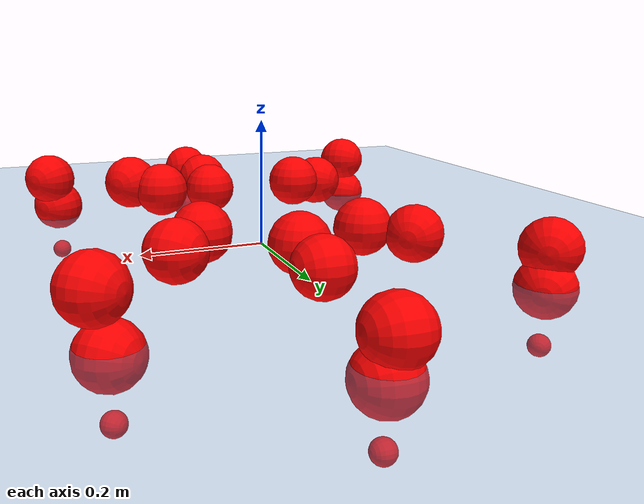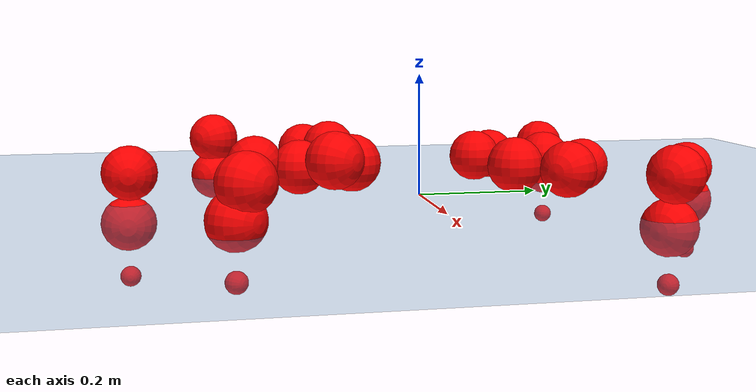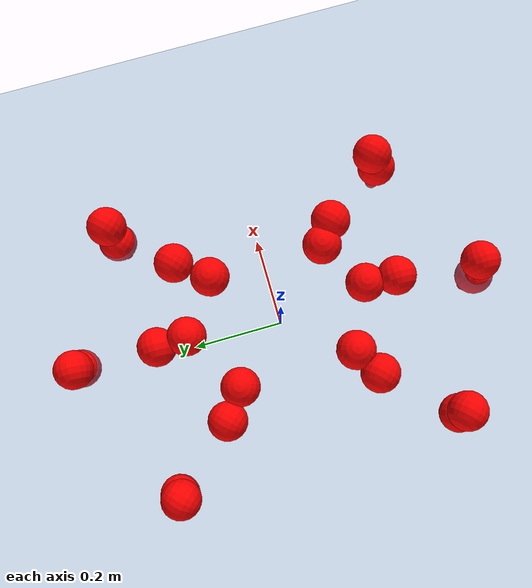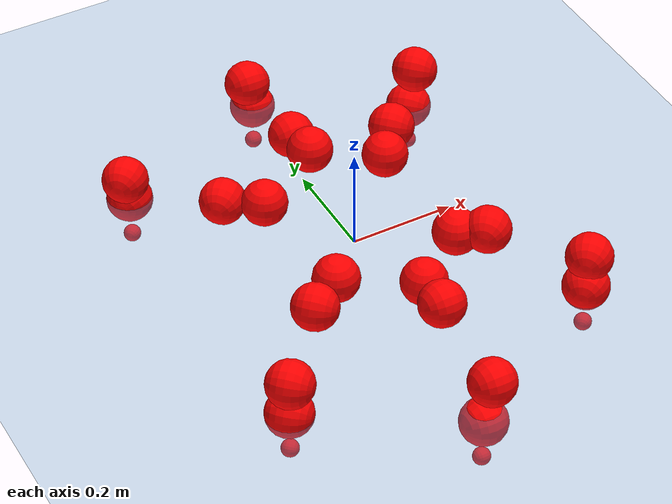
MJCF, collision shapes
<mujoco model="Golem">
  <compiler angle="radian" assetdir="assets" balanceinertia="true" inertiafromgeom="false"/>

  <option timestep="0.005" density="1.2" viscosity="2e-05"/>

  <size nkey="1"/>

  <visual>
    <quality shadowsize="8192"/>
    <map shadowclip="0.5"/>
  </visual>

  <default>
    <default class="/">
      <joint armature="0.01" damping="0.01" frictionloss="0.01"/>
      <geom contype="0" conaffinity="0" group="1" solref="-1000 -80"/>
      <site size="0.01 0.005 0.005" group="5"/>
      <general forcelimited="true" biastype="affine" gainprm="25" biasprm="0 -25 -0.5"/>
      <default class="visual">
        <geom type="mesh" group="2"/>
      </default>
      <default class="collision">
        <geom group="3"/>
      </default>
      <default class="foot">
        <geom size="0.01 0 0" condim="6" group="4" priority="1" solimp="0.015 1 0.01"/>
      </default>
      <default class="reward_collision_sphere">
        <geom group="5" rgba="1 0 0 1"/>
      </default>
    </default>
  </default>

  <asset>
    <texture type="skybox" colorspace="auto" name="//unnamed_texture_0" builtin="gradient" rgb1="0.95 0.95 0.95" rgb2="0.95 0.95 0.95" width="100" height="600"/>
    <texture type="2d" colorspace="auto" name="texplane" builtin="checker" rgb1="0.345 0.575 0.748" rgb2="0.345 0.575 0.748" markrgb="1 1 1" width="512" height="512"/>
    <material name="MatPlane" class="/" texture="texplane" texuniform="true" texrepeat="2 2" specular="0.9"/>
    <mesh name="body" class="/" file="body.stl" scale="0.001 0.001 0.001"/>
    <mesh name="coxa" class="/" file="coxa.stl" scale="0.001 0.001 0.001"/>
    <mesh name="femur" class="/" file="femur.stl" scale="0.001 0.001 0.001"/>
    <mesh name="tibia" class="/" file="tibia.stl" scale="0.001 0.001 0.001"/>
    <mesh name="tarsus" class="/" file="tarsus.stl" scale="0.001 0.001 0.001"/>
  </asset>

  <worldbody>
    <geom name="floor" class="/" size="100 100 0.125" type="plane" group="0" material="MatPlane"/>
    <light name="toplight_shadow" class="/" pos="0 0 5" dir="0.0990148 0.0990148 -0.990148" type="directional" ambient="0.04 0.04 0.04" diffuse="0.55 0.55 0.55" specular="0.12 0.12 0.12"/>
    <light name="toplight_fill" class="/" pos="0 0 5" dir="0.0990148 0.0990148 -0.990148" type="directional" castshadow="false" ambient="0.04 0.04 0.04" diffuse="0.3 0.3 0.3" specular="0.08 0.08 0.08"/>
    <body name="trunk" pos="0.0118841 -0.000114628 0.00994927" quat="0.999997 0.00220426 0.00120615 0.00049186">
      <inertial pos="0.00514962 0.00696875 0.0153944" quat="0.996931 0.0629982 -0.0271685 0.037706" mass="5.64993" diaginertia="0.00400746 0.142205 0.00356047"/>
      <joint name="//unnamed_joint_0" type="free"/>
      <geom name="//unnamed_geom_1" class="/" pos="0 0 0.0504955" quat="1 0 0 0" type="mesh" rgba="0.9 0.9 0.9 1" mesh="body"/>
      <site name="imu" class="/" pos="0.0576114 0.0383017 0.126524" size="0.0109695"/>
      <camera name="track" class="/" pos="0 -3.39918 0" quat="0.707107 0.707107 0 0" mode="trackcom"/>
      <camera name="ego_camera" class="/" pos="0.104297 0 0.0788992" quat="-0.5 -0.5 0.5 0.5"/>
      <body name="coxa_RR" pos="-0.141131 -0.153969 0.0622592" quat="0.382658 -0.000317901 -0.000888005 -0.92389">
        <inertial pos="0.00772068 -0.000961106 0.00906388" quat="0.998392 -0.0207633 0.0237687 0.0470805" mass="0.306289" diaginertia="0.00316171 0.169553 0.00355795"/>
        <joint name="coxa_joint_RR" class="/" pos="0 0 0" axis="0.018161 0.0491716 -0.998625" stiffness="0.00323536" range="-2.95918 2.82707" armature="0.0164581" damping="0.0278259" frictionloss="0.0167466"/>
        <geom name="//unnamed_geom_2" class="/" type="mesh" rgba="0.2 0.2 0.2 1" mesh="coxa"/>
        <geom name="//unnamed_geom_3" class="reward_collision_sphere" size="0.0438782" pos="-0.0240684 0 0"/>
        <body name="femur_RR" pos="0.0457166 -0.0174433 -0.00976307" quat="0.498812 -0.50116 0.501214 0.498808">
          <inertial pos="0.00835277 -0.0153787 -0.0169333" quat="0.999594 0.00124216 0.0232042 -0.0164807" mass="0.263562" diaginertia="0.00271695 0.124303 0.00239545"/>
          <joint name="femur_joint_RR" class="/" pos="0 0 0" axis="-0.0101237 0.0337657 -0.999379" stiffness="0.0296915" range="-3.24675 3.13093" armature="0.00689387" damping="0" frictionloss="0.00156898"/>
          <geom name="//unnamed_geom_4" class="/" type="mesh" rgba="0.9 0.9 0.9 1" mesh="femur"/>
          <geom name="//unnamed_geom_5" class="reward_collision_sphere" size="0.0438782"/>
          <body name="tibia_RR" pos="-0.00904064 -0.199075 0.0164473" quat="-0.000617143 0.999999 0.00145282 0.000523832">
            <inertial pos="-0.0102455 0.0159542 -0.00276713" quat="0.999812 -0.00059536 -0.0112187 -0.0157963" mass="0.232483" diaginertia="0.00317315 0.13759 0.00305236"/>
            <joint name="tibia_joint_RR" class="/" pos="0 0 0" axis="-0.00153096 0.00165825 0.999997" range="-3.14765 3.13307" armature="0.00921544" damping="0" frictionloss="0.0171473"/>
            <geom name="//unnamed_geom_6" class="/" type="mesh" rgba="0.2 0.2 0.2 1" mesh="tibia"/>
            <geom name="//unnamed_geom_7" class="reward_collision_sphere" size="0.0438782"/>
            <body name="tarsus_RR" pos="0.0695277 0.000428919 0.00184896" quat="0.999998 9.61777e-05 -0.000188243 -0.0019453">
              <inertial pos="0.0591183 -0.00342411 0.00400214" quat="0.472729 0.542504 0.490221 0.491833" mass="0.213657" diaginertia="0.00258759 0.147618 0.00274609"/>
              <joint name="tarsus_joint_RR" class="/" pos="0 0 0" axis="0.0350617 0.0110515 0.999324" stiffness="0.00328119" range="-2.80277 2.79173" armature="0.00906695" damping="0" frictionloss="0.00980367"/>
              <geom name="//unnamed_geom_8" class="/" type="mesh" rgba="0.9 0.9 0.9 1" mesh="tarsus"/>
              <geom name="foot_1" class="foot" size="0.00624899" pos="0.0898555 0 0" quat="0 -0.707107 0 0.707107"/>
              <geom name="//unnamed_geom_10" class="reward_collision_sphere" size="0.0438782"/>
              <geom name="//unnamed_geom_11" class="reward_collision_sphere" size="0.0164543" pos="0.0862453 0 0"/>
              <site name="foot_1" class="foot" pos="0.0898555 0 0" quat="0 -0.707107 0 0.707107" size="0.0109695"/>
            </body>
          </body>
        </body>
      </body>
      <body name="coxa_RM" pos="0.0157437 -0.226666 0.0461751" quat="0.707042 -0.000512029 0.00461298 -0.707156">
        <inertial pos="-0.00307978 0.0108444 -0.000509803" quat="0.996623 0.0762293 0.0303006 -0.00367193" mass="0.205487" diaginertia="0.00252185 0.137543 0.00259823"/>
        <joint name="coxa_joint_RM" class="/" pos="0 0 0" axis="-0.0245105 0.0258128 -0.999366" range="-3.02448 3.03708" armature="0.0105374" damping="0" frictionloss="0.0133654"/>
        <geom name="//unnamed_geom_12" class="/" type="mesh" rgba="0.2 0.2 0.2 1" mesh="coxa"/>
        <geom name="//unnamed_geom_13" class="reward_collision_sphere" size="0.0438782" pos="-0.0240684 0 0"/>
        <body name="femur_RM" pos="0.0466414 -0.00565638 0.00824409" quat="0.504734 -0.500582 0.494073 0.500553">
          <inertial pos="0.0157917 0.0104942 0.0172102" quat="0.999792 -0.0138233 -0.00309146 -0.0146544" mass="0.219111" diaginertia="0.00353435 0.142031 0.00272272"/>
          <joint name="femur_joint_RM" class="/" pos="0 0 0" axis="0.0468698 0.0191215 -0.998718" range="-3.2696 2.82989" armature="0.00691644" damping="0.016749" frictionloss="0.0191116"/>
          <geom name="//unnamed_geom_14" class="/" type="mesh" rgba="0.9 0.9 0.9 1" mesh="femur"/>
          <geom name="//unnamed_geom_15" class="reward_collision_sphere" size="0.0438782"/>
          <body name="tibia_RM" pos="0.0128326 -0.194374 -0.0168113" quat="-0.00150603 0.999988 0.00123214 -0.0044355">
            <inertial pos="-0.00474912 -0.00692433 0.00388787" quat="0.999995 0.000998436 -0.00301698 -0.000478374" mass="0.22646" diaginertia="0.00253154 0.110125 0.0025884"/>
            <joint name="tibia_joint_RM" class="/" pos="0 0 0" axis="0.0519767 0.0582282 0.996949" stiffness="0.00495327" range="-3.3049 3.42626" armature="0.0132458" damping="0.0591827" frictionloss="0.00594821"/>
            <geom name="//unnamed_geom_16" class="/" type="mesh" rgba="0.2 0.2 0.2 1" mesh="tibia"/>
            <geom name="//unnamed_geom_17" class="reward_collision_sphere" size="0.0438782"/>
            <body name="tarsus_RM" pos="0.0830739 0.00392467 0.0153363" quat="0.999997 -0.00188454 0.00126649 0.000538857">
              <inertial pos="0.0545932 -0.000985364 -0.01194" quat="0.549771 0.460826 0.492338 0.492945" mass="0.239403" diaginertia="0.00258266 0.129227 0.00333903"/>
              <joint name="tarsus_joint_RM" class="/" pos="0 0 0" axis="-0.0386068 -0.000435532 0.999254" stiffness="0.0174537" range="-2.84908 3.46215" armature="0.0108862" damping="0" frictionloss="0.01451"/>
              <geom name="//unnamed_geom_18" class="/" type="mesh" rgba="0.9 0.9 0.9 1" mesh="tarsus"/>
              <geom name="foot_2" class="foot" size="0.00792362" pos="0.0898555 0 0" quat="0 -0.707107 0 0.707107"/>
              <geom name="//unnamed_geom_20" class="reward_collision_sphere" size="0.0438782"/>
              <geom name="//unnamed_geom_21" class="reward_collision_sphere" size="0.0164543" pos="0.0862453 0 0"/>
              <site name="foot_2" class="foot" pos="0.0898555 0 0" quat="0 -0.707107 0 0.707107" size="0.0109695"/>
            </body>
          </body>
        </body>
      </body>
      <body name="coxa_RF" pos="0.138058 -0.150266 0.064466" quat="0.924378 -0.00464309 -0.00227496 -0.381442">
        <inertial pos="-0.00804015 0.0179527 -0.00576688" quat="0.999376 -0.0301858 0.0182237 0.00224617" mass="0.248331" diaginertia="0.00315623 0.114439 0.0024613"/>
        <joint name="coxa_joint_RF" class="/" pos="0 0 0" axis="0.0362101 0.0137705 -0.999249" stiffness="0.0303805" range="-3.14766 2.89624" armature="0.0131696" damping="0.0725688" frictionloss="0.0116361"/>
        <geom name="//unnamed_geom_22" class="/" type="mesh" rgba="0.2 0.2 0.2 1" mesh="coxa"/>
        <geom name="//unnamed_geom_23" class="reward_collision_sphere" size="0.0438782" pos="-0.0240684 0 0"/>
        <body name="femur_RF" pos="0.0317764 0.00934434 0.00982872" quat="0.499274 -0.500746 0.50001 0.499968">
          <inertial pos="-0.00471672 -0.000628067 -0.0133462" quat="0.99942 0.00919934 -0.0313737 0.00957459" mass="0.266668" diaginertia="0.00323445 0.149894 0.00275217"/>
          <joint name="femur_joint_RF" class="/" pos="0 0 0" axis="0.00956394 -0.0021456 -0.999952" range="-3.45011 3.01889" armature="0.0112555" damping="0.00392827" frictionloss="0.0179023"/>
          <geom name="//unnamed_geom_24" class="/" type="mesh" rgba="0.9 0.9 0.9 1" mesh="femur"/>
          <geom name="//unnamed_geom_25" class="reward_collision_sphere" size="0.0438782"/>
          <body name="tibia_RF" pos="0.0116564 -0.186492 -0.00899277" quat="-0.000148839 1 -0.000227765 -0.000441952">
            <inertial pos="-0.0119754 0.00973008 0.000252743" quat="0.996615 -0.00154074 0.0111845 0.0814254" mass="0.239331" diaginertia="0.00339844 0.160347 0.00295496"/>
            <joint name="tibia_joint_RF" class="/" pos="0 0 0" axis="0.060012 0.024182 0.997905" range="-3.12849 3.14352" armature="0.00774602" damping="0" frictionloss="0.0128645"/>
            <geom name="//unnamed_geom_26" class="/" type="mesh" rgba="0.2 0.2 0.2 1" mesh="tibia"/>
            <geom name="//unnamed_geom_27" class="reward_collision_sphere" size="0.0438782"/>
            <body name="tarsus_RF" pos="0.0535909 0.000764197 0.0179043" quat="0.999986 0.00106188 -0.00504915 -0.000700583">
              <inertial pos="0.0391448 0.0142528 -0.00731372" quat="0.509109 0.52393 0.491242 0.474327" mass="0.313203" diaginertia="0.00325027 0.163657 0.00264212"/>
              <joint name="tarsus_joint_RF" class="/" pos="0 0 0" axis="-0.00651209 -0.0679595 0.997667" stiffness="0.0194312" range="-2.88234 3.14662" armature="0.0111648" damping="0" frictionloss="0.0148616"/>
              <geom name="//unnamed_geom_28" class="/" type="mesh" rgba="0.9 0.9 0.9 1" mesh="tarsus"/>
              <geom name="foot_3" class="foot" size="0.00887812" pos="0.0898555 0 0" quat="0 -0.707107 0 0.707107"/>
              <geom name="//unnamed_geom_30" class="reward_collision_sphere" size="0.0438782"/>
              <geom name="//unnamed_geom_31" class="reward_collision_sphere" size="0.0164543" pos="0.0862453 0 0"/>
              <site name="foot_3" class="foot" pos="0.0898555 0 0" quat="0 -0.707107 0 0.707107" size="0.0109695"/>
            </body>
          </body>
        </body>
      </body>
      <body name="coxa_LR" pos="-0.146872 0.142418 0.0383162" quat="0.380072 0.00252958 -0.00270936 0.924949">
        <inertial pos="0.00543706 0.00583361 -0.0142133" quat="0.999823 0.00224156 -0.0129394 -0.0134612" mass="0.258651" diaginertia="0.00298683 0.133328 0.00331038"/>
        <joint name="coxa_joint_LR" class="/" pos="0 0 0" axis="-0.0113014 0.0198205 -0.99974" stiffness="0.0645889" range="-2.95036 2.98749" armature="0.0160069" damping="0.0129487" frictionloss="0.0196779"/>
        <geom name="//unnamed_geom_32" class="/" type="mesh" rgba="0.2 0.2 0.2 1" mesh="coxa"/>
        <geom name="//unnamed_geom_33" class="reward_collision_sphere" size="0.0438782" pos="-0.0240684 0 0"/>
        <body name="femur_LR" pos="0.0527723 0.0114662 -0.005739" quat="0.499211 -0.498775 0.499269 0.502736">
          <inertial pos="-0.014906 0.00891736 -0.0125657" quat="0.999215 -0.0274005 0.0134431 -0.0252553" mass="0.328585" diaginertia="0.00352781 0.144156 0.00328233"/>
          <joint name="femur_joint_LR" class="/" pos="0 0 0" axis="-0.00167838 -0.00491241 0.999987" range="-2.80124 3.44795" armature="0.0194384" damping="0" frictionloss="0.00999926"/>
          <geom name="//unnamed_geom_34" class="/" type="mesh" rgba="0.9 0.9 0.9 1" mesh="femur"/>
          <geom name="//unnamed_geom_35" class="reward_collision_sphere" size="0.0438782"/>
          <body name="tibia_LR" pos="-0.000598541 -0.190558 -0.00643075" quat="-0.00335195 0.999988 -0.00336406 -0.00146512">
            <inertial pos="-0.0101846 0.0128844 0.000171674" quat="0.999996 0.00273689 0.000270106 0.000171995" mass="0.226289" diaginertia="0.00314914 0.120123 0.00358467"/>
            <joint name="tibia_joint_LR" class="/" pos="0 0 0" axis="0.0318198 0.0654047 -0.997351" stiffness="0.0499543" range="-3.23024 3.42043" armature="0.0151652" damping="0" frictionloss="0.010267"/>
            <geom name="//unnamed_geom_36" class="/" type="mesh" rgba="0.2 0.2 0.2 1" mesh="tibia"/>
            <geom name="//unnamed_geom_37" class="reward_collision_sphere" size="0.0438782"/>
            <body name="tarsus_LR" pos="0.0544167 -0.00156809 0.011654" quat="0.99997 0.00534247 0.00230462 -0.00516262">
              <inertial pos="0.0621802 0.0134761 0.00719934" quat="0.4986 0.501623 0.499034 0.500737" mass="0.266392" diaginertia="0.00350675 0.176716 0.0027855"/>
              <joint name="tarsus_joint_LR" class="/" pos="0 0 0" axis="-0.00274034 0.00768052 -0.999967" stiffness="0.0524517" range="-3.09324 3.08494" armature="0.00614031" damping="0" frictionloss="0.00284523"/>
              <geom name="//unnamed_geom_38" class="/" type="mesh" rgba="0.9 0.9 0.9 1" mesh="tarsus"/>
              <geom name="foot_4" class="foot" size="0.00950956" pos="0.0898555 0 0" quat="0.707107 0 -0.707107 0"/>
              <geom name="//unnamed_geom_40" class="reward_collision_sphere" size="0.0438782"/>
              <geom name="//unnamed_geom_41" class="reward_collision_sphere" size="0.0164543" pos="0.0862453 0 0"/>
              <site name="foot_4" class="foot" pos="0.0898555 0 0" quat="0.707107 0 -0.707107 0" size="0.0109695"/>
            </body>
          </body>
        </body>
      </body>
      <body name="coxa_LM" pos="0.0084106 0.232709 0.0480438" quat="0.707045 0.000264538 -0.000101537 0.707169">
        <inertial pos="-0.0145478 -0.000960266 -0.00777847" quat="0.999217 -0.00505557 -0.0392396 0.000383743" mass="0.31078" diaginertia="0.00306691 0.166276 0.00390479"/>
        <joint name="coxa_joint_LM" class="/" pos="0 0 0" axis="0.00481708 0.00500137 -0.999976" range="-3.22564 3.14844" armature="0.00933647" damping="0.0585162" frictionloss="0.0169987"/>
        <geom name="//unnamed_geom_42" class="/" type="mesh" rgba="0.2 0.2 0.2 1" mesh="coxa"/>
        <geom name="//unnamed_geom_43" class="reward_collision_sphere" size="0.0438782" pos="-0.0240684 0 0"/>
        <body name="femur_LM" pos="0.0460571 0.00247023 -0.0135344" quat="0.499825 -0.500121 0.500075 0.499978">
          <inertial pos="-0.0112334 -0.000713454 0.0101514" quat="0.999309 0.00733855 -0.0357776 0.00683161" mass="0.246556" diaginertia="0.00344668 0.125861 0.00213382"/>
          <joint name="femur_joint_LM" class="/" pos="0 0 0" axis="-0.0582987 -0.0558674 0.996735" range="-3.45363 3.32566" armature="0.0136816" damping="0.0969418" frictionloss="0.010729"/>
          <geom name="//unnamed_geom_44" class="/" type="mesh" rgba="0.9 0.9 0.9 1" mesh="femur"/>
          <geom name="//unnamed_geom_45" class="reward_collision_sphere" size="0.0438782"/>
          <body name="tibia_LM" pos="0.0107686 -0.19046 -0.00353941" quat="-0.00298008 0.999993 0.00188237 -0.000916772">
            <inertial pos="0.0157888 0.000123789 -1.02245e-05" quat="0.999304 -0.0199569 0.00470975 -0.0311713" mass="0.235942" diaginertia="0.00320828 0.131852 0.00254741"/>
            <joint name="tibia_joint_LM" class="/" pos="0 0 0" axis="7.86396e-05 -3.80714e-05 -1" range="-3.27835 3.32482" armature="0.0176648" damping="0" frictionloss="0.0207162"/>
            <geom name="//unnamed_geom_46" class="/" type="mesh" rgba="0.2 0.2 0.2 1" mesh="tibia"/>
            <geom name="//unnamed_geom_47" class="reward_collision_sphere" size="0.0438782"/>
            <body name="tarsus_LM" pos="0.0551157 -0.00362319 0.00784285" quat="0.999993 0.000871559 -9.07486e-05 0.00368612">
              <inertial pos="0.0615613 0.00128078 0.0112766" quat="0.497597 0.465975 0.475106 0.556362" mass="0.241933" diaginertia="0.00345911 0.140777 0.00316703"/>
              <joint name="tarsus_joint_LM" class="/" pos="0 0 0" axis="-0.0155062 -0.0219386 -0.999639" stiffness="6.2976e-05" range="-3.39685 3.15388" armature="0.00693438" damping="0" frictionloss="0.00891277"/>
              <geom name="//unnamed_geom_48" class="/" type="mesh" rgba="0.9 0.9 0.9 1" mesh="tarsus"/>
              <geom name="foot_5" class="foot" size="0.00362529" pos="0.0898555 0 0" quat="0.707107 0 -0.707107 0"/>
              <geom name="//unnamed_geom_50" class="reward_collision_sphere" size="0.0438782"/>
              <geom name="//unnamed_geom_51" class="reward_collision_sphere" size="0.0164543" pos="0.0862453 0 0"/>
              <site name="foot_5" class="foot" pos="0.0898555 0 0" quat="0.707107 0 -0.707107 0" size="0.0109695"/>
            </body>
          </body>
        </body>
      </body>
      <body name="coxa_LF" pos="0.139171 0.141979 0.0530715" quat="0.925404 -0.000956558 -0.00065486 0.37898">
        <inertial pos="0.00120536 0.0168265 0.00625701" quat="0.997264 -0.0104023 -0.0608365 0.0406825" mass="0.188818" diaginertia="0.00268263 0.119303 0.00255895"/>
        <joint name="coxa_joint_LF" class="/" pos="0 0 0" axis="-0.0459408 -0.0274488 -0.998567" stiffness="0.0631223" range="-3.39139 3.14801" armature="0.00537564" damping="0" frictionloss="0.0185504"/>
        <geom name="//unnamed_geom_52" class="/" type="mesh" rgba="0.2 0.2 0.2 1" mesh="coxa"/>
        <geom name="//unnamed_geom_53" class="reward_collision_sphere" size="0.0438782" pos="-0.0240684 0 0"/>
        <body name="femur_LF" pos="0.0623538 0.0119167 -0.00247498" quat="0.501804 -0.49785 0.50083 0.499508">
          <inertial pos="0.000121273 -0.0115251 0.0145742" quat="0.999504 0.0162608 0.0142808 0.0228784" mass="0.228269" diaginertia="0.00259515 0.123449 0.0030739"/>
          <joint name="femur_joint_LF" class="/" pos="0 0 0" axis="-0.0211245 -0.0253773 0.999455" stiffness="0.0764149" range="-3.02186 3.13077" armature="0.00437383" damping="0" frictionloss="0.0103319"/>
          <geom name="//unnamed_geom_54" class="/" type="mesh" rgba="0.9 0.9 0.9 1" mesh="femur"/>
          <geom name="//unnamed_geom_55" class="reward_collision_sphere" size="0.0438782"/>
          <body name="tibia_LF" pos="-0.00481416 -0.172351 0.00328058" quat="-0.00131501 0.999999 -0.000260194 -0.000164507">
            <inertial pos="-0.0156207 -0.0157095 -0.0173147" quat="0.999268 -0.00309403 0.00376917 0.0379527" mass="0.255512" diaginertia="0.00310119 0.118325 0.00233609"/>
            <joint name="tibia_joint_LF" class="/" pos="0 0 0" axis="0.0026795 0.0437857 -0.999037" range="-3.37851 3.45207" armature="0.0140931" damping="0" frictionloss="0.0172112"/>
            <geom name="//unnamed_geom_56" class="/" type="mesh" rgba="0.2 0.2 0.2 1" mesh="tibia"/>
            <geom name="//unnamed_geom_57" class="reward_collision_sphere" size="0.0438782"/>
            <body name="tarsus_LF" pos="0.0813303 -0.0115019 -0.00767276" quat="1 -0.000106648 -2.10099e-05 0.000485393">
              <inertial pos="0.059937 0.00679537 -0.0156376" quat="0.454963 0.479604 0.545407 0.515287" mass="0.258514" diaginertia="0.0026299 0.1367 0.00233114"/>
              <joint name="tarsus_joint_LF" class="/" pos="0 0 0" axis="0.0106855 0.00793238 -0.999911" range="-2.85888 3.4597" armature="0.00475318" damping="0" frictionloss="0.00522408"/>
              <geom name="//unnamed_geom_58" class="/" type="mesh" rgba="0.9 0.9 0.9 1" mesh="tarsus"/>
              <geom name="foot_6" class="foot" size="0.00619497" pos="0.0898555 0 0" quat="0.707107 0 -0.707107 0"/>
              <geom name="//unnamed_geom_60" class="reward_collision_sphere" size="0.0438782"/>
              <geom name="//unnamed_geom_61" class="reward_collision_sphere" size="0.0164543" pos="0.0862453 0 0"/>
              <site name="foot_6" class="foot" pos="0.0898555 0 0" quat="0.707107 0 -0.707107 0" size="0.0109695"/>
            </body>
          </body>
        </body>
      </body>
    </body>
  </worldbody>

  <contact>
    <pair class="/" geom1="floor" geom2="foot_1" name="//unnamed_contact_0"/>
    <pair class="/" geom1="floor" geom2="foot_2" name="//unnamed_contact_1"/>
    <pair class="/" geom1="floor" geom2="foot_3" name="//unnamed_contact_2"/>
    <pair class="/" geom1="floor" geom2="foot_4" name="//unnamed_contact_3"/>
    <pair class="/" geom1="floor" geom2="foot_5" name="//unnamed_contact_4"/>
    <pair class="/" geom1="floor" geom2="foot_6" name="//unnamed_contact_5"/>
  </contact>

  <actuator>
    <general name="coxa_joint_RR" class="/" joint="coxa_joint_RR" forcerange="-9.82975 9.82975" gainprm="15.6999" biasprm="0 -15.6999 -0.520066"/>
    <general name="femur_joint_RR" class="/" joint="femur_joint_RR" forcerange="-7.5604 7.5604" gainprm="15.6999" biasprm="0 -15.6999 -0.520066"/>
    <general name="tibia_joint_RR" class="/" joint="tibia_joint_RR" forcerange="-8.17522 8.17522" gainprm="15.6999" biasprm="0 -15.6999 -0.520066"/>
    <general name="tarsus_joint_RR" class="/" joint="tarsus_joint_RR" forcerange="-6.93487 6.93487" gainprm="15.6999" biasprm="0 -15.6999 -0.520066"/>
    <general name="coxa_joint_RM" class="/" joint="coxa_joint_RM" forcerange="-9.04179 9.04179" gainprm="15.6999" biasprm="0 -15.6999 -0.520066"/>
    <general name="femur_joint_RM" class="/" joint="femur_joint_RM" forcerange="-7.55202 7.55202" gainprm="15.6999" biasprm="0 -15.6999 -0.520066"/>
    <general name="tibia_joint_RM" class="/" joint="tibia_joint_RM" forcerange="-7.99294 7.99294" gainprm="15.6999" biasprm="0 -15.6999 -0.520066"/>
    <general name="tarsus_joint_RM" class="/" joint="tarsus_joint_RM" forcerange="-11.863 11.863" gainprm="15.6999" biasprm="0 -15.6999 -0.520066"/>
    <general name="coxa_joint_RF" class="/" joint="coxa_joint_RF" forcerange="-9.0031 9.0031" gainprm="15.6999" biasprm="0 -15.6999 -0.520066"/>
    <general name="femur_joint_RF" class="/" joint="femur_joint_RF" forcerange="-7.80459 7.80459" gainprm="15.6999" biasprm="0 -15.6999 -0.520066"/>
    <general name="tibia_joint_RF" class="/" joint="tibia_joint_RF" forcerange="-8.12011 8.12011" gainprm="15.6999" biasprm="0 -15.6999 -0.520066"/>
    <general name="tarsus_joint_RF" class="/" joint="tarsus_joint_RF" forcerange="-9.93521 9.93521" gainprm="15.6999" biasprm="0 -15.6999 -0.520066"/>
    <general name="coxa_joint_LR" class="/" joint="coxa_joint_LR" forcerange="-10.3552 10.3552" gainprm="15.6999" biasprm="0 -15.6999 -0.520066"/>
    <general name="femur_joint_LR" class="/" joint="femur_joint_LR" forcerange="-12.2693 12.2693" gainprm="15.6999" biasprm="0 -15.6999 -0.520066"/>
    <general name="tibia_joint_LR" class="/" joint="tibia_joint_LR" forcerange="-6.52517 6.52517" gainprm="15.6999" biasprm="0 -15.6999 -0.520066"/>
    <general name="tarsus_joint_LR" class="/" joint="tarsus_joint_LR" forcerange="-8.17248 8.17248" gainprm="15.6999" biasprm="0 -15.6999 -0.520066"/>
    <general name="coxa_joint_LM" class="/" joint="coxa_joint_LM" forcerange="-8.53744 8.53744" gainprm="15.6999" biasprm="0 -15.6999 -0.520066"/>
    <general name="femur_joint_LM" class="/" joint="femur_joint_LM" forcerange="-10.8704 10.8704" gainprm="15.6999" biasprm="0 -15.6999 -0.520066"/>
    <general name="tibia_joint_LM" class="/" joint="tibia_joint_LM" forcerange="-7.83816 7.83816" gainprm="15.6999" biasprm="0 -15.6999 -0.520066"/>
    <general name="tarsus_joint_LM" class="/" joint="tarsus_joint_LM" forcerange="-4.79619 4.79619" gainprm="15.6999" biasprm="0 -15.6999 -0.520066"/>
    <general name="coxa_joint_LF" class="/" joint="coxa_joint_LF" forcerange="-10.1942 10.1942" gainprm="15.6999" biasprm="0 -15.6999 -0.520066"/>
    <general name="femur_joint_LF" class="/" joint="femur_joint_LF" forcerange="-4.26489 4.26489" gainprm="15.6999" biasprm="0 -15.6999 -0.520066"/>
    <general name="tibia_joint_LF" class="/" joint="tibia_joint_LF" forcerange="-8.07976 8.07976" gainprm="15.6999" biasprm="0 -15.6999 -0.520066"/>
    <general name="tarsus_joint_LF" class="/" joint="tarsus_joint_LF" forcerange="-13.3004 13.3004" gainprm="15.6999" biasprm="0 -15.6999 -0.520066"/>
  </actuator>

  <sensor>
    <gyro site="imu" name="imu_angular_velocity"/>
    <velocimeter site="imu" name="imu_linear_velocity"/>
    <framelinvel objtype="site" objname="foot_1" name="foot_1_global_linear_velocity"/>
    <framelinvel objtype="site" objname="foot_2" name="foot_2_global_linear_velocity"/>
    <framelinvel objtype="site" objname="foot_3" name="foot_3_global_linear_velocity"/>
    <framelinvel objtype="site" objname="foot_4" name="foot_4_global_linear_velocity"/>
    <framelinvel objtype="site" objname="foot_5" name="foot_5_global_linear_velocity"/>
    <framelinvel objtype="site" objname="foot_6" name="foot_6_global_linear_velocity"/>
  </sensor>

  <keyframe>
    <key name="home" qpos="0 0 0.1457 1 0 0 0 0 0 0 0 0 0 0 0 0 0 0 0 0 0 0 0 0 0 0 0 0 0 0 0"/>
  </keyframe>
</mujoco>
